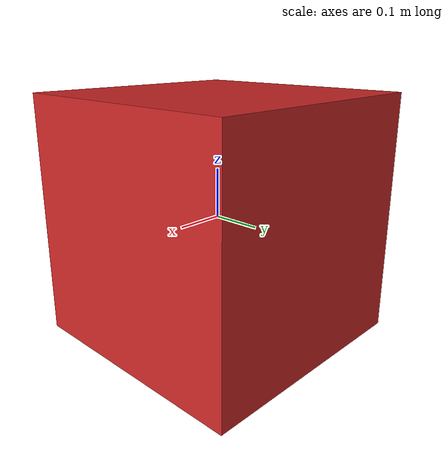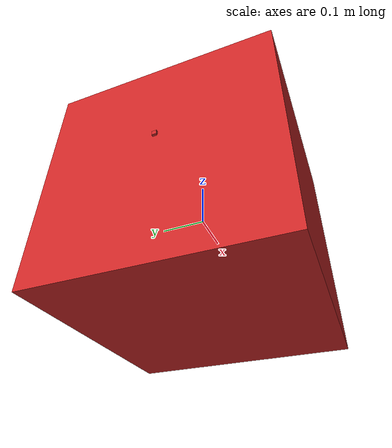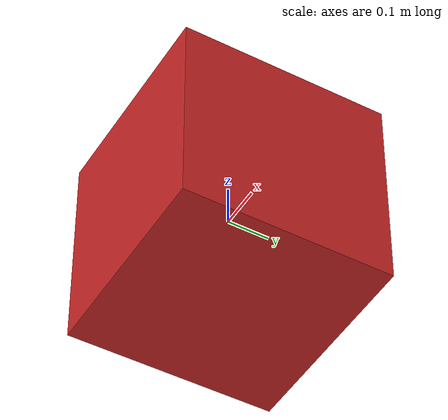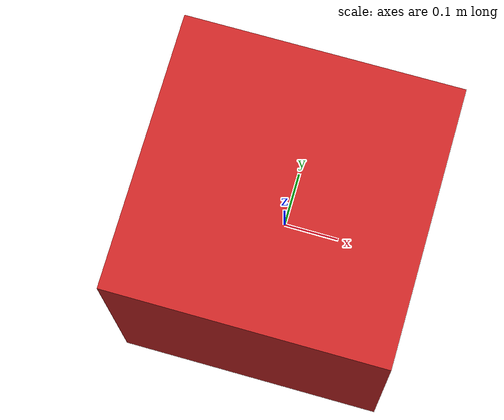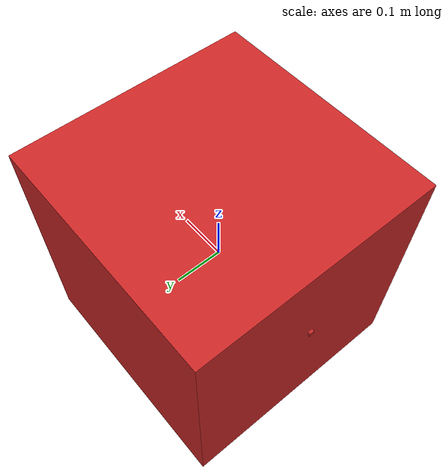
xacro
<?xml version="1.0"?>
<robot xmlns:xacro="http://www.ros.org/wiki/xacro" name="mouse_bot">

  <xacro:arg name="name" default="mouse" />

  <xacro:include filename="inertial_macros.xacro"/>

  <!-- Link Definitions -->
  <link name="base_link">
    <xacro:inertial_box mass="1" x="0.5" y="0.5" z="0.5" >
            <origin xyz="0.0 0 0.0" rpy="0 0 0" />
        </xacro:inertial_box>
    <visual>
      <geometry>
        <box size="0.5 0.5 0.5"/>
      </geometry>
      <material name="red"/>
    </visual>
    <collision name="base_link_collision_$(arg name)">
      <geometry>
        <box size="0.5 0.5 0.5"/>
      </geometry>
    </collision>
  </link>

  <gazebo reference="base_link">
      <material>Gazebo/Red</material>

      <sensor type="contact" name="contact_sensor">
        <always_on>true</always_on>
        <update_rate>10</update_rate>
        <contact>
          <collision>base_link_collision_$(arg name)_collision</collision>
        </contact>
        <plugin name="bumper_plugin_$(arg name)" filename="libgazebo_ros_bumper.so">
            <alwaysOn>true</alwaysOn>
            <frameName>base_link</frameName>
            <ros>
              <remapping>bumper_states:=collision</remapping>
            </ros>
        </plugin>
      </sensor>
  </gazebo>

  <link name="left_wheel_link">
    <xacro:inertial_cylinder mass="0.2" radius="0.1" length="0.1">
        <origin xyz="0 0 0" rpy="0 0 0" />
    </xacro:inertial_cylinder>
    <collision>
      <geometry>
        <cylinder length="0.1" radius="0.1"/>
      </geometry>
    </collision>
  </link>

  <gazebo reference="left_wheel_link">
        <material>Gazebo/Black</material>
  </gazebo>

  <link name="right_wheel_link">
    <xacro:inertial_cylinder mass="0.2" radius="0.1" length="0.1">
        <origin xyz="0 0 0" rpy="0 0 0" />
    </xacro:inertial_cylinder>
    <collision>
      <geometry>
        <cylinder length="0.1" radius="0.1"/>
      </geometry>
    </collision>
  </link>

  <gazebo reference="right_wheel_link">
        <material>Gazebo/Black</material>
  </gazebo>

  <link name="caster_wheel_link">
    <xacro:inertial_sphere mass="0.1" radius="0.1">
        <origin xyz="0 0 0" rpy="0 0 0" />
    </xacro:inertial_sphere>
    <collision>
      <geometry>
        <sphere radius="0.1"/>
      </geometry>
    </collision>
  </link>

  <gazebo reference="caster_wheel_link">
        <material>Gazebo/Black</material>
        <mu1 value="0.01"/>
        <mu2 value="0.01"/>
  </gazebo>

  <!-- Joint Definitions -->
  <joint name="left_wheel_joint" type="continuous">
    <parent link="base_link"/>
    <child link="left_wheel_link"/>
    <origin xyz="-0.25 0.3 -0.19" rpy="${pi/2} 0 0"/>
    <axis xyz="0 0 1"/>
  </joint>

  <joint name="right_wheel_joint" type="continuous">
    <parent link="base_link"/>
    <child link="right_wheel_link"/>
    <origin xyz="-0.25 -0.3 -0.19" rpy="${pi/2} 0 0"/>
    <axis xyz="0 0 1"/>
  </joint>

  <joint name="front_laser_joint" type="fixed">
        <parent link="base_link"/>
        <child link="front_laser_link"/>
        <origin xyz="-0.25 0.0 0.04" rpy="0 0 ${pi}"/>
    </joint>

    <link name="front_laser_link">
        <visual>
            <geometry>
                <box size="0.01 0.01 0.01" />
            </geometry>
            <material name="red" />
        </visual>
    </link>

  <xacro:include filename="lasers_def.xacro" />

  <xacro:laser_sensor sensor_name="front" name="$(arg name)" />

  <joint name="caster_wheel_joint" type="continuous">
    <parent link="base_link"/>
    <child link="caster_wheel_link"/>
    <origin xyz="0.22 0 -0.20"/>
    <axis xyz="0 0 1"/>
  </joint>

  <!-- ros2_control Configuration -->
  <ros2_control name="GazeboSystem_$(arg name)" type="system">
    <hardware>
      <plugin>gazebo_ros2_control/GazeboSystem</plugin>
    </hardware>
      <joint name="left_wheel_joint">
        <command_interface name="velocity" />
        <state_interface name="velocity" />
        <state_interface name="position" />
      </joint>
      <joint name="right_wheel_joint">
        <command_interface name="velocity" />
        <state_interface name="velocity" />
        <state_interface name="position" />
      </joint>
  </ros2_control>

  <!-- Gazebo Configuration -->
  <gazebo>
    <plugin name="$(arg name)_gazebo_ros2_control" filename="libgazebo_ros2_control.so">
      <ros>
        <namespace>$(arg name)</namespace>
        <remapping>/tf:=/$(arg name)/tf</remapping>
        <remapping>/tf_static:=/$(arg name)/tf_static</remapping>
      </ros>
      <robot_param_node>/$(arg name)/robot_state_publisher</robot_param_node>
      <parameters>$(find gym)/config/my_controllers.yaml</parameters>
    </plugin>
  </gazebo>

</robot>
